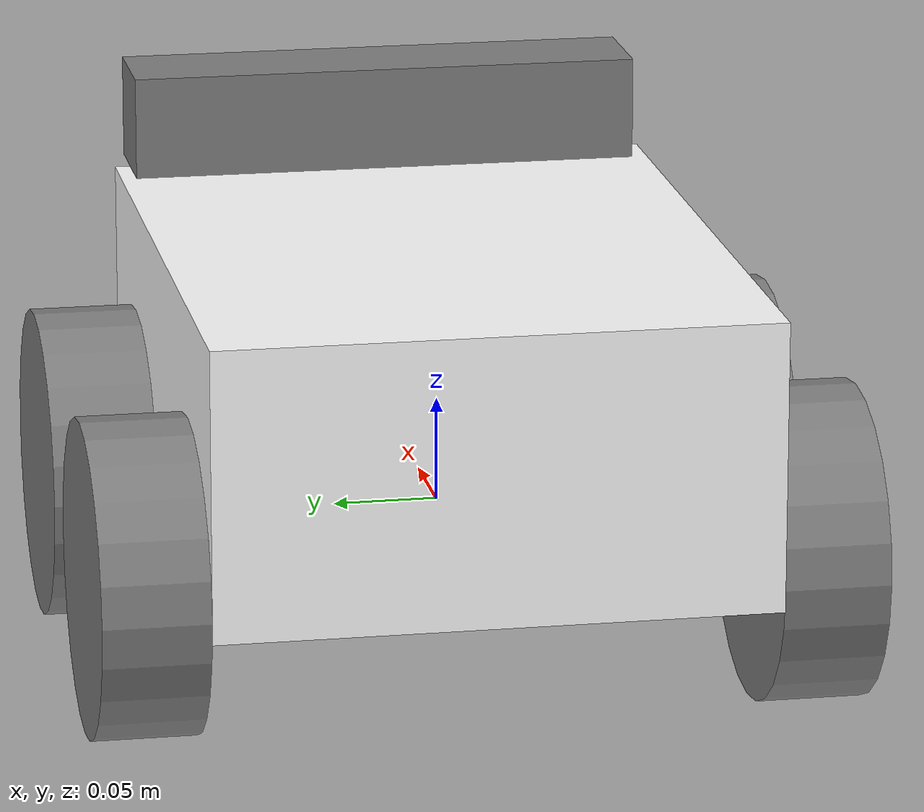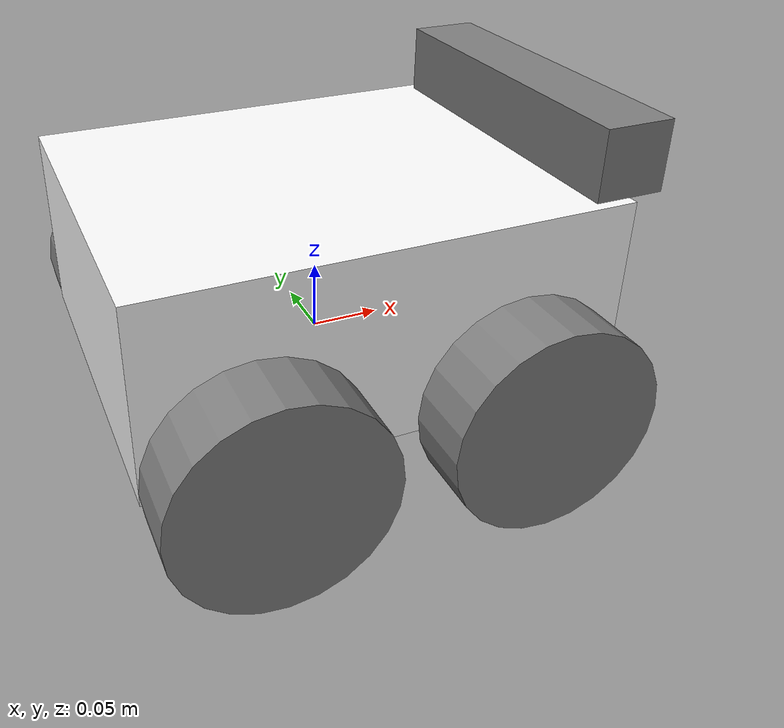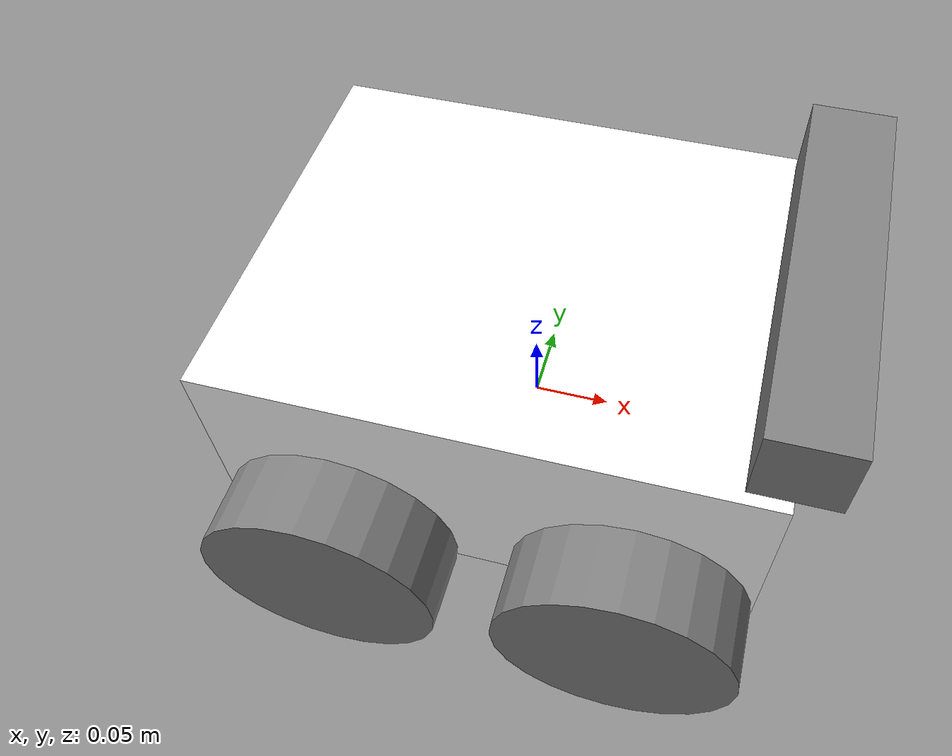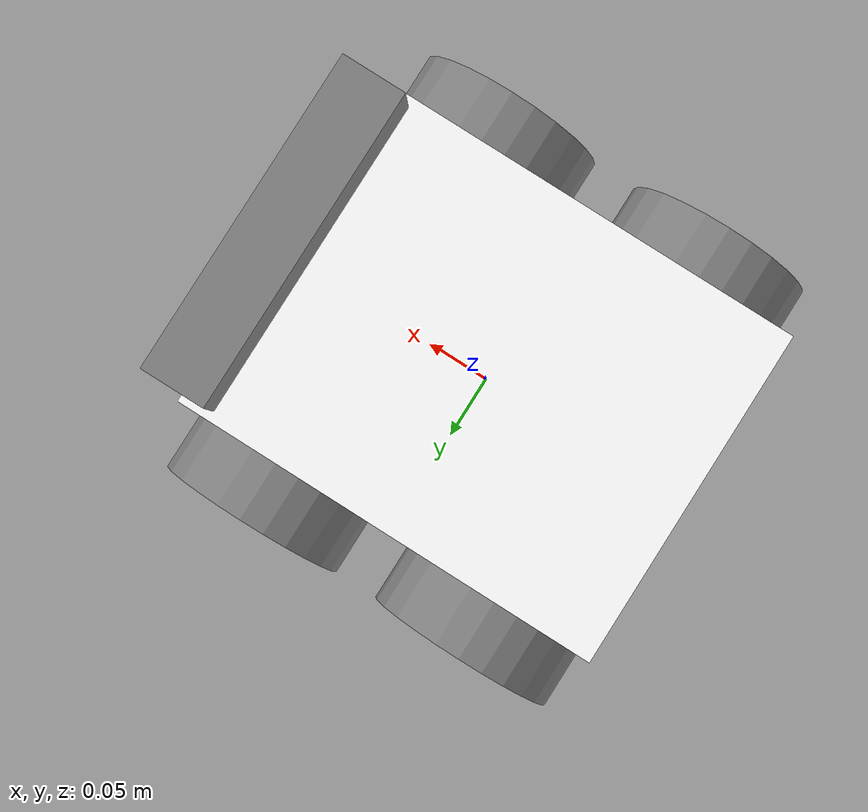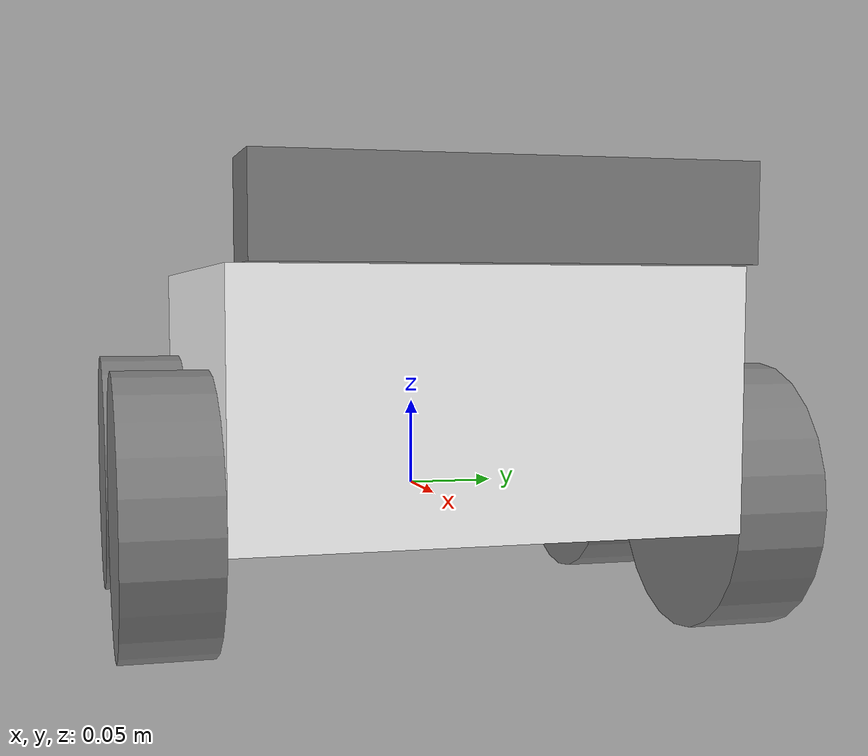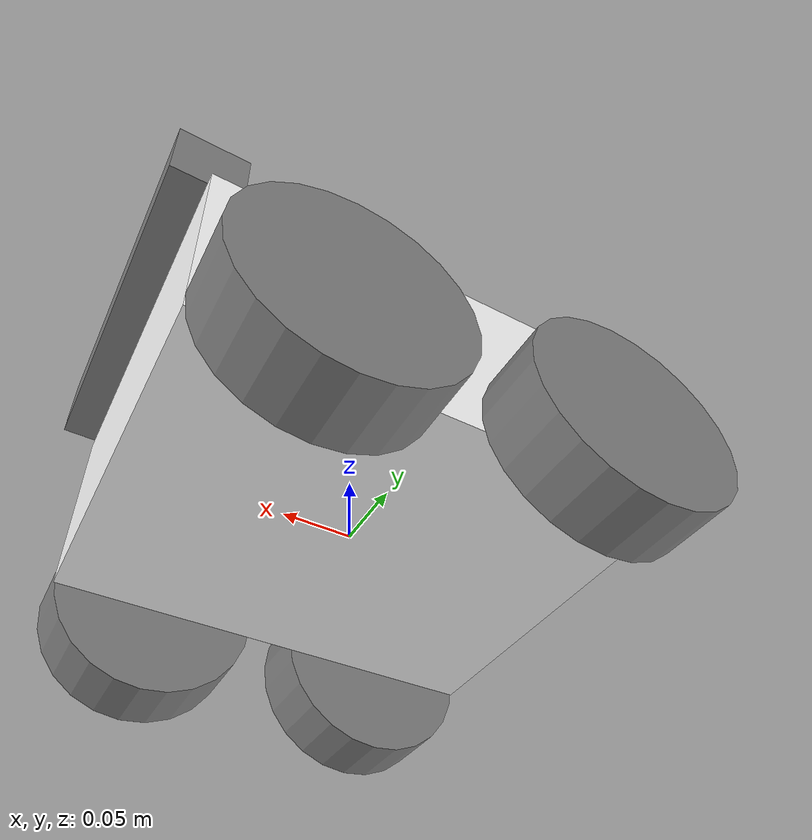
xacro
<?xml version="1.0"?>
<robot xmlns:xacro="http://www.ros.org/wiki/xacro"  name="my_robot">

    <xacro:arg name="use_ros_control" default="true"/>
    <xacro:arg name="sim_mode" default="false"/>

    <xacro:include filename="robot_core.xacro" />

    <xacro:include filename="gazebo_control.xacro" />

    <xacro:include filename="kinect_camera.xacro" />

    <xacro:include filename="materials.xacro" />

</robot>

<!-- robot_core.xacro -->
<robot xmlns:xacro="http://www.ros.org/wiki/xacro" >

    <xacro:include filename="inertial_macros.xacro"/>

    <xacro:property name="chassis_length" value="0.335"/>
    <xacro:property name="chassis_width" value="0.265"/>
    <xacro:property name="chassis_height" value="0.138"/>
    <xacro:property name="chassis_mass" value="1.0"/>
    <xacro:property name="wheel_radius" value="0.075"/>
    <xacro:property name="wheel_thickness" value="0.050"/>
    <xacro:property name="wheel_mass" value="0.01"/>
    <xacro:property name="wheel_offset_x" value="0.226"/>
    <xacro:property name="wheel_offset_z" value="0.01"/>

    <xacro:property name="front_wheel_offset_x" value="0.226"/>
    <xacro:property name="rear_wheel_offset_x" value="-0.226"/>

    <xacro:property name="caster_wheel_radius" value="0.01"/>

    <!-- BASE LINK -->

    <link name="base_link">

    </link>

    <!-- BASE_FOOTPRINT LINK -->

    <joint name="base_footprint_joint" type="fixed">
        <parent link="base_link"/>
        <child link="base_footprint"/>
        <origin xyz="0 0 0" rpy="0 0 0"/>
    </joint>

    <link name="base_footprint">
    </link>

    <!-- CHASSIS LINK -->

    <joint name="chassis_joint" type="fixed">
        <parent link="base_link"/>
        <child link="chassis"/>
        <origin xyz="${-chassis_length/2} 0 ${-wheel_offset_z}"/>
    </joint>

    <link name="chassis">
        <visual>
            <origin xyz="${chassis_length/2} 0 ${chassis_height/2}"/>
            <geometry>
                <box size="${chassis_length} ${chassis_width} ${chassis_height}"/>
            </geometry>
            <material name="white"/>
        </visual>
        <collision>
            <origin xyz="${chassis_length/2} 0 ${chassis_height/2}"/>
            <geometry>
                <box size="${chassis_length} ${chassis_width} ${chassis_height}"/>
            </geometry>
        </collision>
        <xacro:inertial_box mass="0.5" x="${chassis_length}" y="${chassis_width}" z="${chassis_height}">
            <origin xyz="${chassis_length/2} 0 ${chassis_height/2}" rpy="0 0 0"/>
        </xacro:inertial_box>
    </link>

    <gazebo reference="chassis">
        <material>Gazebo/Orange</material>
    </gazebo>

    <!-- LEFT FRONT WHEEL LINK -->

    <joint name="left_front_wheel_joint" type="continuous">
        <parent link="base_link"/>
        <child link="left_front_wheel"/>
        <origin xyz="${chassis_length/2-wheel_radius} ${chassis_width/2+wheel_thickness/2} 0" rpy="-${pi/2} 0 0" />
        <axis xyz="0 0 1"/>
    </joint>

    <link name="left_front_wheel">
        <visual>
            <geometry>
                <cylinder radius="${wheel_radius}" length="${wheel_thickness}"/>
            </geometry>
            <material name="black"/>
        </visual>
        <collision>
            <geometry>
                <sphere radius="${wheel_radius}"/>
            </geometry>
        </collision>
        <xacro:inertial_cylinder mass="${wheel_mass}" length="${wheel_thickness}" radius="${wheel_radius}">
            <origin xyz="0 0 0" rpy="0 0 0"/>
        </xacro:inertial_cylinder>
    </link>

    <gazebo reference="left_front_wheel">
        <material>Gazebo/Black</material>
    </gazebo>

     <!-- LEFT REAR WHEEL LINK -->

    <joint name="left_rear_wheel_joint" type="continuous">
        <parent link="base_link"/>
        <child link="left_rear_wheel"/>
        <origin xyz="-${chassis_length/2-wheel_radius} ${chassis_width/2+wheel_thickness/2} 0" rpy="-${pi/2} 0 0" />
        <axis xyz="0 0 1"/>
    </joint>

    <link name="left_rear_wheel">
        <visual>
            <geometry>
                <cylinder radius="${wheel_radius}" length="${wheel_thickness}"/>
            </geometry>
            <material name="black"/>
        </visual>
        <collision>
            <geometry>
                <sphere radius="${wheel_radius}"/>
            </geometry>
        </collision>
        <xacro:inertial_cylinder mass="${wheel_mass}" length="${wheel_thickness}" radius="${wheel_radius}">
            <origin xyz="0 0 0" rpy="0 0 0"/>
        </xacro:inertial_cylinder>
    </link>

    <gazebo reference="left_rear_wheel">
        <material>Gazebo/Black</material>
    </gazebo>

    <!-- RIGHT WHEEL LINK -->

    <joint name="right_front_wheel_joint" type="continuous">
        <parent link="base_link"/>
        <child link="right_front_wheel"/>
        <origin xyz="${chassis_length/2-wheel_radius} ${-chassis_width/2-wheel_thickness/2} 0" rpy="${pi/2} 0 0" />
        <axis xyz="0 0 -1"/>
    </joint>

    <link name="right_front_wheel">
        <visual>
            <geometry>
                <cylinder radius="${wheel_radius}" length="${wheel_thickness}"/>
            </geometry>
            <material name="black"/>
        </visual>
        <collision>
            <geometry>
                <sphere radius="${wheel_radius}"/>
            </geometry>
        </collision>
        <xacro:inertial_cylinder mass="${wheel_mass}" length="${wheel_thickness}" radius="${wheel_radius}">
            <origin xyz="0 0 0" rpy="0 0 0"/>
        </xacro:inertial_cylinder>
    </link>

    <gazebo reference="right_front_wheel">
        <material>Gazebo/Black</material>
    </gazebo>

    <!-- RIGHT WHEEL LINK -->

    <joint name="right_rear_wheel_joint" type="continuous">
        <parent link="base_link"/>
        <child link="right_rear_wheel"/>
        <origin xyz="-${chassis_length/2-wheel_radius} ${-chassis_width/2-wheel_thickness/2} 0" rpy="${pi/2} 0 0" />
        <axis xyz="0 0 -1"/>
    </joint>

    <link name="right_rear_wheel">
        <visual>
            <geometry>
                <cylinder radius="${wheel_radius}" length="${wheel_thickness}"/>
            </geometry>
            <material name="black"/>
        </visual>
        <collision>
            <geometry>
                <sphere radius="${wheel_radius}"/>
            </geometry>
        </collision>
        <xacro:inertial_cylinder mass="${wheel_mass}" length="${wheel_thickness}" radius="${wheel_radius}">
            <origin xyz="0 0 0" rpy="0 0 0"/>
        </xacro:inertial_cylinder>
    </link>

    <gazebo reference="right_rear_wheel">
        <material>Gazebo/Black</material>
    </gazebo>

    <!-- CASTER WHEEL LINK -->

</robot>

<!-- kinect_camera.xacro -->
<robot xmlns:sensor="http://playerstage.sourceforge.net/gazebo/xmlschema/#sensor"
      xmlns:controller="http://playerstage.sourceforge.net/gazebo/xmlschema/#controller"
      xmlns:interface="http://playerstage.sourceforge.net/gazebo/xmlschema/#interface"
      xmlns:xacro="http://ros.org/wiki/xacro">

  <xacro:include filename="kinect_camera.gazebo.xacro" />

    <joint name="camera_joint" type="fixed">
      <parent link="chassis"/>
      <child link="camera_link"/>
      <origin xyz="${chassis_length} 0 ${0.138+0.05/2}" rpy="0 0 0"/>
    </joint>

    <link name="camera_link">
        <inertial>
          <origin xyz="0 0 0" rpy="0 0 0"/>
          <mass value="0.5"/>
          <inertia ixx="0.01" ixy="0.0" ixz="0.0" iyy="0.01" iyz="0.0" izz="0.01"/>
        </inertial>
        <visual>
          <origin xyz="0 0 0" rpy="0 0 0"/>
          <geometry>
            <box size="0.05 0.25 0.05"/>
          </geometry>
          <material name="black">
            <color rgba="0.5 0.5 0.5 1.0"/>
          </material>
        </visual>
        <collision>
          <origin xyz="0 0 0" rpy="0 0 0"/>
          <geometry>
            <box size="0.05 0.25 0.05"/>
          </geometry>
        </collision>
    </link>

    <joint name="camera_optical_joint" type="fixed">
        <parent link="camera_link"/>
        <child link="camera_link_optical"/>
        <origin xyz="0 0 0" rpy="${-pi/2} 0 ${-pi/2}"/>
    </joint>

    <link name="camera_link_optical"></link>

    <!-- extensions -->
    <xacro:kinect_camera_gazebo_v0/>

</robot>

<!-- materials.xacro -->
<robot>

  <material name="white">
        <color rgba="1 1 1 1" />
    </material>

    <material name="orange">
        <color rgba="1 0.3 0.1 1"/>
    </material>

    <material name="blue">
        <color rgba="0.2 0.2 1 1"/>
    </material>

    <material name="black">
        <color rgba="0 0 0 1"/>
    </material>

    <material name="red">
        <color rgba="1 0 0 1"/>
    </material>

    <material name="green">
      <color rgba="0.0 0.8 0.0 1.0"/>
    </material>

    <material name="grey">
      <color rgba="0.5 0.5 0.5 1.0"/>
    </material>

    <material name="brown">
      <color rgba="${222/255} ${207/255} ${195/255} 1.0"/>
    </material>

</robot>
